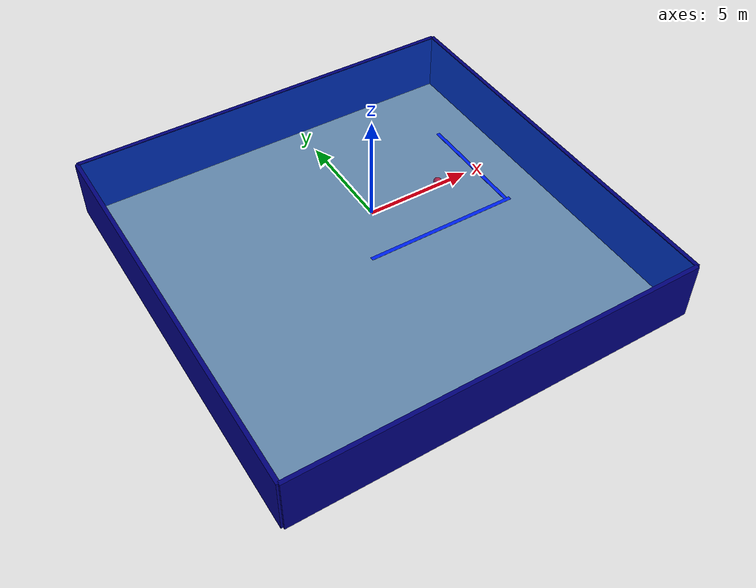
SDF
<sdf version="1.9">
 <world name="hydronaut_pool">
  <plugin filename="gz-sim-physics-system" name="gz::sim::systems::Physics"/>
  <plugin filename="gz-sim-user-commands-system" name="gz::sim::systems::UserCommands"/>
  <plugin filename="gz-sim-scene-broadcaster-system" name="gz::sim::systems::SceneBroadcaster"/>
  <plugin filename="gz-sim-sensors-system" name="gz::sim::systems::Sensors">
   <render_engine>ogre2</render_engine>
  </plugin>
  <plugin filename="gz-sim-imu-system" name="gz::sim::systems::Imu"/>
  <plugin filename="gz-sim-buoyancy-system" name="gz::sim::systems::Buoyancy">
   <graded_buoyancy>
    <default_density>1000</default_density>
    <density_change><above_depth>0</above_depth><density>1</density></density_change>
   </graded_buoyancy>
  </plugin>
  <physics name="1ms" type="ignore">
   <max_step_size>0.001</max_step_size>
   <real_time_factor>1.0</real_time_factor>
  </physics>
  <scene><ambient>1.0 1.0 1.0 1</ambient><background>0.1 0.2 0.3 1</background><shadows>false</shadows></scene>
  <light type="directional" name="sun">
   <pose>0 0 10 0 0 0</pose>
   <diffuse>1 1 1 1</diffuse>
   <direction>-0.5 0.1 -0.9</direction>
  </light>
  <model name="water_plane">
   <static>true</static>
   <link name="link">
    <visual name="water_plane">
     <geometry><plane><size>20 20</size><normal>0 0 1</normal></plane></geometry>
     <material>
      <ambient>0 0.5 1 0.4</ambient>
      <diffuse>0 0.5 1 0.4</diffuse>
      <specular>0.5 0.5 1 0.1</specular>
     </material>
    </visual>
   </link>
  </model>
  <model name="pool_floor">
   <static>true</static>
   <pose>0 0 -3 0 0 0</pose>
   <link name="link">
    <collision name="collision">
     <geometry><plane><normal>0 0 1</normal><size>20 20</size></plane></geometry>
    </collision>
    <visual name="visual">
     <geometry><plane><normal>0 0 1</normal><size>20 20</size></plane></geometry>
     <material><ambient>0.6 0.6 0.6 1</ambient><diffuse>0.6 0.6 0.6 1</diffuse></material>
    </visual>
   </link>
  </model>
  <model name="blue_line_track">
   <static>true</static>
   <link name="track_link">
    <visual name="straight_leg">
     <pose>4.0 0 -2.98 0 0 0</pose>
     <geometry><box><size>8.0 0.2 0.01</size></box></geometry>
     <material><ambient>0.0 0.0 1.0 1.0</ambient><diffuse>0.0 0.0 1.0 1.0</diffuse></material>
    </visual>
    <visual name="turn_leg">
     <pose>7.8 3.0 -2.98 0 0 0</pose>
     <geometry><box><size>0.2 6.0 0.01</size></box></geometry>
     <material><ambient>0.0 0.0 1.0 1.0</ambient><diffuse>0.0 0.0 1.0 1.0</diffuse></material>
    </visual>
   </link>
  </model>
  <model name="red_target_ball">
   <pose>5.0 2.0 -2.0 0 0 0</pose>
   <link name="ball_link">
    <inertial>
     <mass>33.51</mass>
     <inertia><ixx>0.536</ixx><ixy>0</ixy><ixz>0</ixz><iyy>0.536</iyy><iyz>0</iyz><izz>0.536</izz></inertia>
    </inertial>
    <visual name="ball_visual">
     <geometry><sphere><radius>0.2</radius></sphere></geometry>
     <material><ambient>1.0 0.0 0.0 1</ambient><diffuse>1.0 0.0 0.0 1</diffuse></material>
    </visual>
    <collision name="ball_collision"><geometry><sphere><radius>0.2</radius></sphere></geometry></collision>
   </link>
  </model>
  <model name="pool_walls">
   <static>true</static>
   <pose>0 0 -1.5 0 0 0</pose>
   <link name="link">
    <collision name="wall_n_col">
     <pose>0 10 0 0 0 0</pose>
     <geometry><box><size>20 0.2 3</size></box></geometry>
    </collision>
    <visual name="wall_n_vis">
     <pose>0 10 0 0 0 0</pose>
     <geometry><box><size>20 0.2 3</size></box></geometry>
     <material><ambient>0 0 0.2 1</ambient><diffuse>0 0 0.5 1</diffuse></material>
    </visual>
    <collision name="wall_e_col">
     <pose>10 0 0 0 0 0</pose>
     <geometry><box><size>0.2 20 3</size></box></geometry>
    </collision>
    <visual name="wall_e_vis">
     <pose>10 0 0 0 0 0</pose>
     <geometry><box><size>0.2 20 3</size></box></geometry>
     <material><ambient>0 0 0.2 1</ambient><diffuse>0 0 0.5 1</diffuse></material>
    </visual>
    <collision name="wall_w_col">
     <pose>-10 0 0 0 0 0</pose>
     <geometry><box><size>0.2 20 3</size></box></geometry>
    </collision>
    <visual name="wall_w_vis">
     <pose>-10 0 0 0 0 0</pose>
     <geometry><box><size>0.2 20 3</size></box></geometry>
     <material><ambient>0 0 0.2 1</ambient><diffuse>0 0 0.5 1</diffuse></material>
    </visual>
    <collision name="wall_s_col">
     <pose>0 -10 0 0 0 0</pose>
     <geometry><box><size>20 0.2 3</size></box></geometry>
    </collision>
    <visual name="wall_s_vis">
     <pose>0 -10 0 0 0 0</pose>
     <geometry><box><size>20 0.2 3</size></box></geometry>
     <material><ambient>0 0 0.2 1</ambient><diffuse>0 0 0.5 1</diffuse></material>
    </visual>
   </link>
  </model>
 </world>
</sdf>
